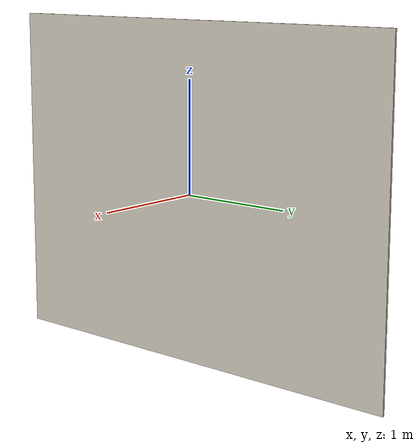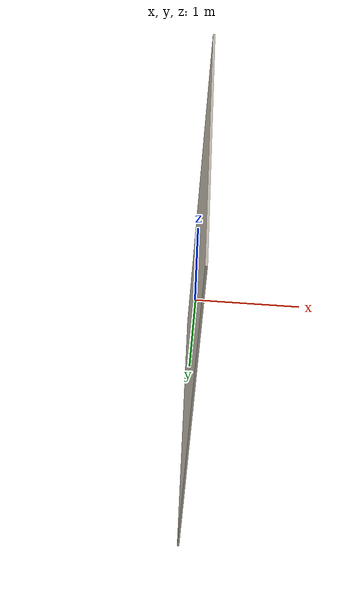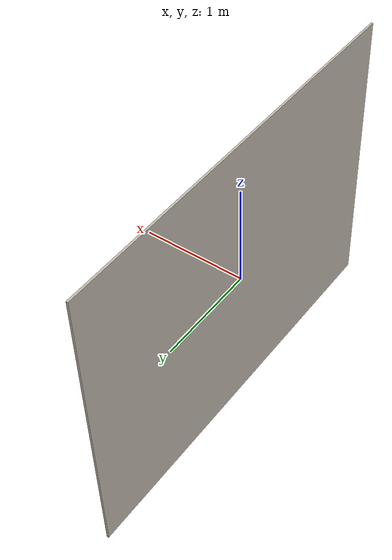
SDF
<?xml version="1.0"?>
<sdf version="1.12">
  <model name="p19_defect_target_001">
    <static>true</static>
    <!-- Model origin x=3.01 places the near/front surface anchor at world x=3.0. -->
    <link name="target_surface">
      <collision name="target_collision">
        <geometry><box><size>0.02 4.0 3.0</size></box></geometry>
      </collision>
      <visual name="defect_face">
        <geometry><box><size>0.02 4.0 3.0</size></box></geometry>
        <material>
          <ambient>0.65 0.62 0.57 1</ambient>
          <diffuse>0.75 0.72 0.67 1</diffuse>
          <pbr><metal>
            <albedo_map>materials/textures/honeycombing_v1.png</albedo_map>
            <roughness>0.92</roughness><metalness>0.0</metalness>
          </metal></pbr>
        </material>
      </visual>
    </link>
    <plugin filename="gz-sim-label-system" name="gz::sim::systems::Label">
      <label>19</label>
    </plugin>
  </model>
</sdf>
